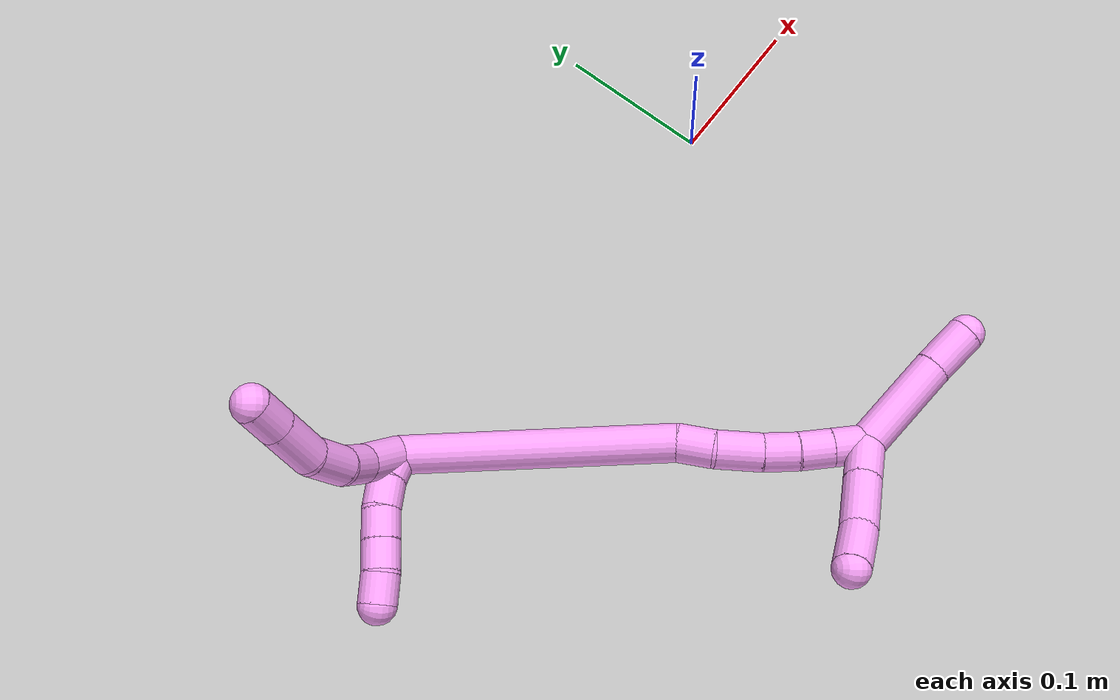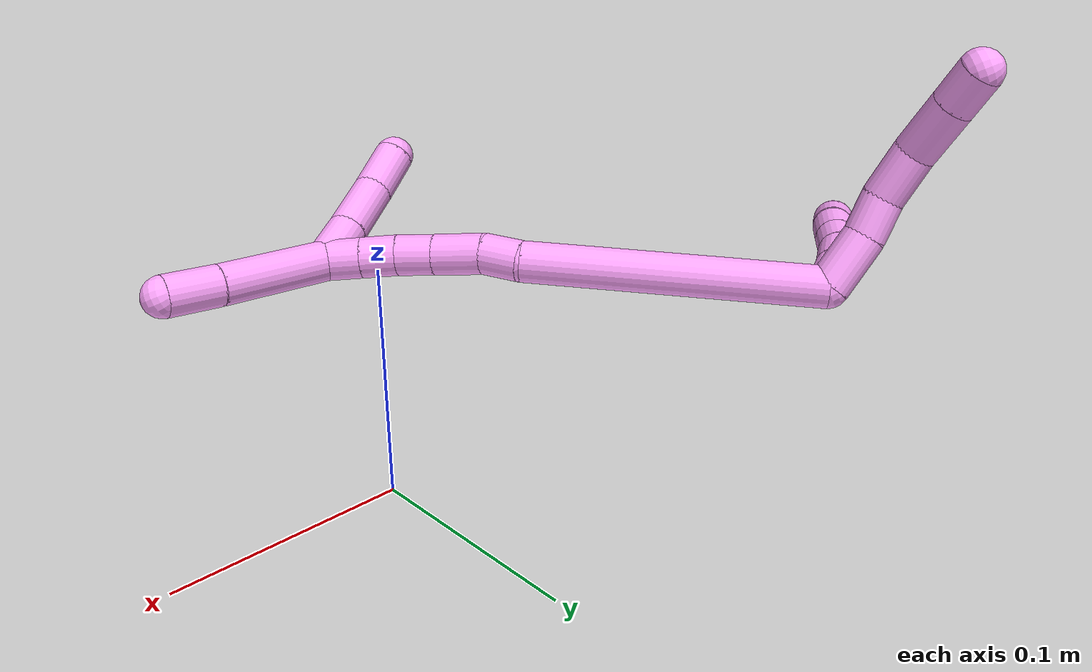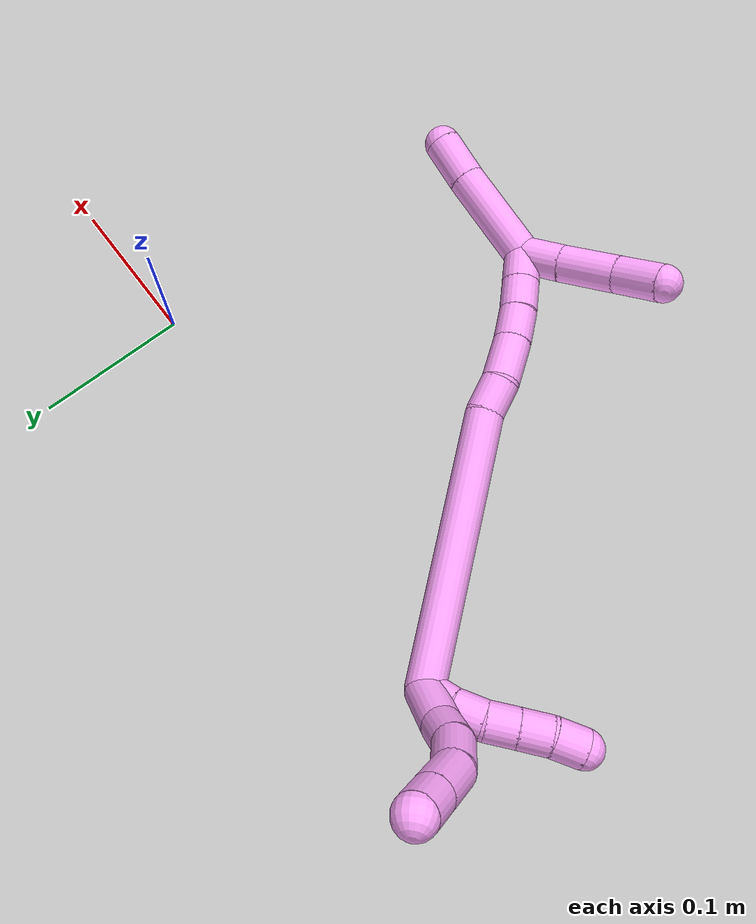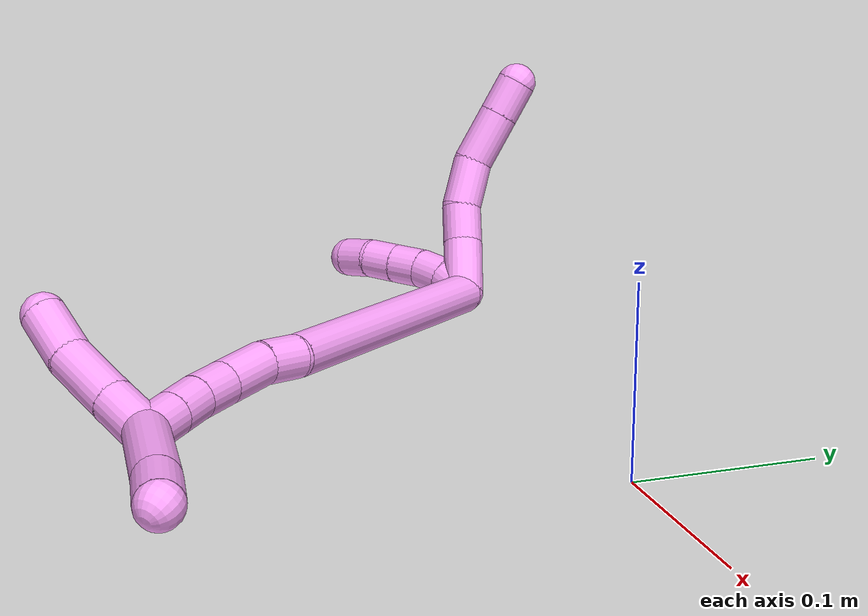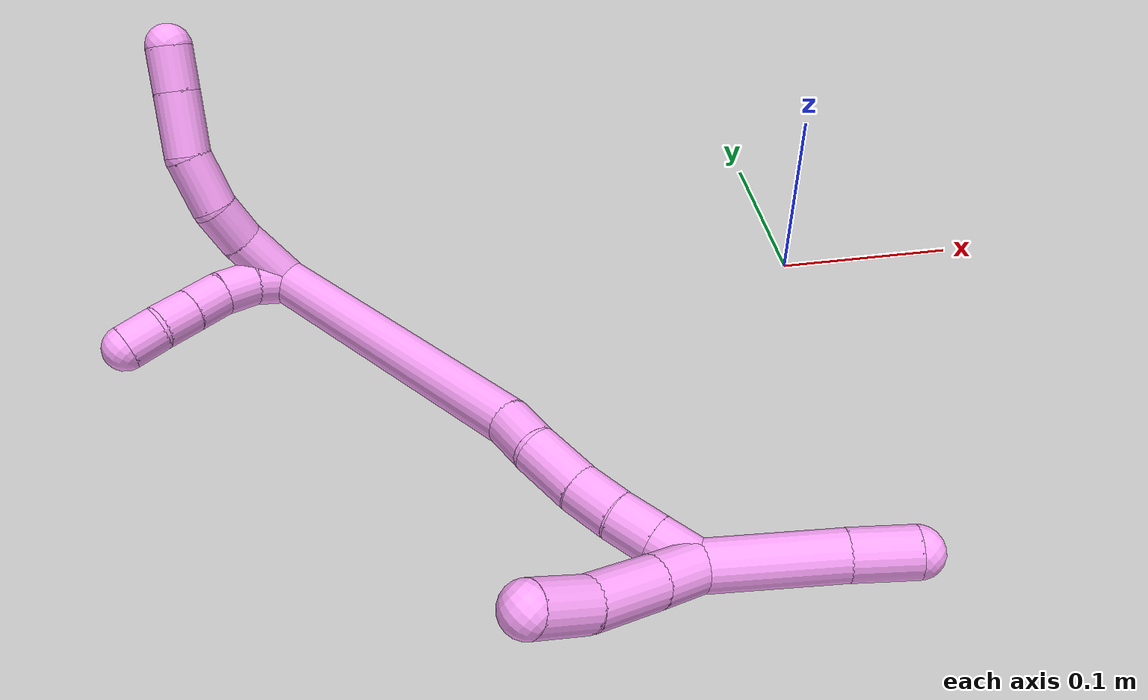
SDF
<sdf version="1.7">
 <world name="default">
  <model name="4">
   <static>0</static>
   <link name="4">
    <collision name="collision-cylinder-e_1_2_8">
     <pose>-0.00583 -0.008313 0.014452 0.52201 -0.336394 -0.090645</pose>
     <geometry><cylinder><radius>0.0125</radius><length>0.035325</length></cylinder></geometry>
     <surface>
      <friction><ode><mu>1.16</mu><mu2>1.16</mu2><slip1>0</slip1><slip2>0</slip2></ode></friction>
      <contact><ode><kp>1e+06</kp><kd>1</kd><max_vel>0</max_vel><min_depth>0.001</min_depth></ode></contact>
     </surface>
    </collision>
    <visual name="visual-cylinder-e_1_2_8">
     <pose>-0.00583 -0.008313 0.014452 0.52201 -0.336394 -0.090645</pose>
     <geometry><cylinder><radius>0.0125</radius><length>0.035325</length></cylinder></geometry>
     <material><ambient>1 0.65098 0.996078 1</ambient></material>
    </visual>
    <collision name="collision-cylinder-e_2_8_9">
     <pose>-0.014957 -0.024548 0.037616 0.737897 -0.272995 -0.106115</pose>
     <geometry><cylinder><radius>0.0125</radius><length>0.024456</length></cylinder></geometry>
     <surface>
      <friction><ode><mu>1.16</mu><mu2>1.16</mu2><slip1>0</slip1><slip2>0</slip2></ode></friction>
      <contact><ode><kp>1e+06</kp><kd>1</kd><max_vel>0</max_vel><min_depth>0.001</min_depth></ode></contact>
     </surface>
    </collision>
    <visual name="visual-cylinder-e_2_8_9">
     <pose>-0.014957 -0.024548 0.037616 0.737897 -0.272995 -0.106115</pose>
     <geometry><cylinder><radius>0.0125</radius><length>0.024456</length></cylinder></geometry>
     <material><ambient>1 0.65098 0.996078 1</ambient></material>
    </visual>
    <collision name="collision-cylinder-e_3_9_10">
     <pose>-0.018284 -0.041997 0.058603 0.660074 -0.001941 -0.000665</pose>
     <geometry><cylinder><radius>0.0125</radius><length>0.031077</length></cylinder></geometry>
     <surface>
      <friction><ode><mu>1.16</mu><mu2>1.16</mu2><slip1>0</slip1><slip2>0</slip2></ode></friction>
      <contact><ode><kp>1e+06</kp><kd>1</kd><max_vel>0</max_vel><min_depth>0.001</min_depth></ode></contact>
     </surface>
    </collision>
    <visual name="visual-cylinder-e_3_9_10">
     <pose>-0.018284 -0.041997 0.058603 0.660074 -0.001941 -0.000665</pose>
     <geometry><cylinder><radius>0.0125</radius><length>0.031077</length></cylinder></geometry>
     <material><ambient>1 0.65098 0.996078 1</ambient></material>
    </visual>
    <collision name="collision-cylinder-e_4_10_11">
     <pose>-0.012914 -0.062319 0.083535 0.706122 0.313893 0.116497</pose>
     <geometry><cylinder><radius>0.0125</radius><length>0.034979</length></cylinder></geometry>
     <surface>
      <friction><ode><mu>1.16</mu><mu2>1.16</mu2><slip1>0</slip1><slip2>0</slip2></ode></friction>
      <contact><ode><kp>1e+06</kp><kd>1</kd><max_vel>0</max_vel><min_depth>0.001</min_depth></ode></contact>
     </surface>
    </collision>
    <visual name="visual-cylinder-e_4_10_11">
     <pose>-0.012914 -0.062319 0.083535 0.706122 0.313893 0.116497</pose>
     <geometry><cylinder><radius>0.0125</radius><length>0.034979</length></cylinder></geometry>
     <material><ambient>1 0.65098 0.996078 1</ambient></material>
    </visual>
    <collision name="collision-cylinder-e_5_11_6">
     <pose>-0.003783 -0.080586 0.104922 0.707966 0.313902 0.116831</pose>
     <geometry><cylinder><radius>0.0125</radius><length>0.024163</length></cylinder></geometry>
     <surface>
      <friction><ode><mu>1.16</mu><mu2>1.16</mu2><slip1>0</slip1><slip2>0</slip2></ode></friction>
      <contact><ode><kp>1e+06</kp><kd>1</kd><max_vel>0</max_vel><min_depth>0.001</min_depth></ode></contact>
     </surface>
    </collision>
    <visual name="visual-cylinder-e_5_11_6">
     <pose>-0.003783 -0.080586 0.104922 0.707966 0.313902 0.116831</pose>
     <geometry><cylinder><radius>0.0125</radius><length>0.024163</length></cylinder></geometry>
     <material><ambient>1 0.65098 0.996078 1</ambient></material>
    </visual>
    <collision name="collision-cylinder-e_1_2_12">
     <pose>-0.008815 -0.001102 0.004592 0.235456 -1.07899 -0.141397</pose>
     <geometry><cylinder><radius>0.0125</radius><length>0.02</length></cylinder></geometry>
     <surface>
      <friction><ode><mu>1.16</mu><mu2>1.16</mu2><slip1>0</slip1><slip2>0</slip2></ode></friction>
      <contact><ode><kp>1e+06</kp><kd>1</kd><max_vel>0</max_vel><min_depth>0.001</min_depth></ode></contact>
     </surface>
    </collision>
    <visual name="visual-cylinder-e_1_2_12">
     <pose>-0.008815 -0.001102 0.004592 0.235456 -1.07899 -0.141397</pose>
     <geometry><cylinder><radius>0.0125</radius><length>0.02</length></cylinder></geometry>
     <material><ambient>1 0.65098 0.996078 1</ambient></material>
    </visual>
    <collision name="collision-cylinder-e_2_12_13">
     <pose>-0.027347 -0.002362 0.01154 0.067201 -1.33242 -0.052835</pose>
     <geometry><cylinder><radius>0.0125</radius><length>0.02</length></cylinder></geometry>
     <surface>
      <friction><ode><mu>1.16</mu><mu2>1.16</mu2><slip1>0</slip1><slip2>0</slip2></ode></friction>
      <contact><ode><kp>1e+06</kp><kd>1</kd><max_vel>0</max_vel><min_depth>0.001</min_depth></ode></contact>
     </surface>
    </collision>
    <visual name="visual-cylinder-e_2_12_13">
     <pose>-0.027347 -0.002362 0.01154 0.067201 -1.33242 -0.052835</pose>
     <geometry><cylinder><radius>0.0125</radius><length>0.02</length></cylinder></geometry>
     <material><ambient>1 0.65098 0.996078 1</ambient></material>
    </visual>
    <collision name="collision-cylinder-e_3_13_14">
     <pose>-0.047052 -0.002449 0.014381 -0.145169 -1.52168 0.138232</pose>
     <geometry><cylinder><radius>0.0125</radius><length>0.02</length></cylinder></geometry>
     <surface>
      <friction><ode><mu>1.16</mu><mu2>1.16</mu2><slip1>0</slip1><slip2>0</slip2></ode></friction>
      <contact><ode><kp>1e+06</kp><kd>1</kd><max_vel>0</max_vel><min_depth>0.001</min_depth></ode></contact>
     </surface>
    </collision>
    <visual name="visual-cylinder-e_3_13_14">
     <pose>-0.047052 -0.002449 0.014381 -0.145169 -1.52168 0.138232</pose>
     <geometry><cylinder><radius>0.0125</radius><length>0.02</length></cylinder></geometry>
     <material><ambient>1 0.65098 0.996078 1</ambient></material>
    </visual>
    <collision name="collision-cylinder-e_4_14_15">
     <pose>-0.067023 -0.002311 0.015445 -0.115528 -1.51255 0.109001</pose>
     <geometry><cylinder><radius>0.0125</radius><length>0.02</length></cylinder></geometry>
     <surface>
      <friction><ode><mu>1.16</mu><mu2>1.16</mu2><slip1>0</slip1><slip2>0</slip2></ode></friction>
      <contact><ode><kp>1e+06</kp><kd>1</kd><max_vel>0</max_vel><min_depth>0.001</min_depth></ode></contact>
     </surface>
    </collision>
    <visual name="visual-cylinder-e_4_14_15">
     <pose>-0.067023 -0.002311 0.015445 -0.115528 -1.51255 0.109001</pose>
     <geometry><cylinder><radius>0.0125</radius><length>0.02</length></cylinder></geometry>
     <material><ambient>1 0.65098 0.996078 1</ambient></material>
    </visual>
    <collision name="collision-cylinder-e_5_15_5">
     <pose>-0.086759 -0.000281 0.017037 -1.09404 -1.34801 0.90554</pose>
     <geometry><cylinder><radius>0.0125</radius><length>0.02</length></cylinder></geometry>
     <surface>
      <friction><ode><mu>1.16</mu><mu2>1.16</mu2><slip1>0</slip1><slip2>0</slip2></ode></friction>
      <contact><ode><kp>1e+06</kp><kd>1</kd><max_vel>0</max_vel><min_depth>0.001</min_depth></ode></contact>
     </surface>
    </collision>
    <visual name="visual-cylinder-e_5_15_5">
     <pose>-0.086759 -0.000281 0.017037 -1.09404 -1.34801 0.90554</pose>
     <geometry><cylinder><radius>0.0125</radius><length>0.02</length></cylinder></geometry>
     <material><ambient>1 0.65098 0.996078 1</ambient></material>
    </visual>
    <collision name="collision-cylinder-e_1_2_16">
     <pose>-0.005606 -0.038911 -0.079767 2.68775 -0.063083 -0.271611</pose>
     <geometry><cylinder><radius>0.0125</radius><length>0.177857</length></cylinder></geometry>
     <surface>
      <friction><ode><mu>1.16</mu><mu2>1.16</mu2><slip1>0</slip1><slip2>0</slip2></ode></friction>
      <contact><ode><kp>1e+06</kp><kd>1</kd><max_vel>0</max_vel><min_depth>0.001</min_depth></ode></contact>
     </surface>
    </collision>
    <visual name="visual-cylinder-e_1_2_16">
     <pose>-0.005606 -0.038911 -0.079767 2.68775 -0.063083 -0.271611</pose>
     <geometry><cylinder><radius>0.0125</radius><length>0.177857</length></cylinder></geometry>
     <material><ambient>1 0.65098 0.996078 1</ambient></material>
    </visual>
    <collision name="collision-cylinder-e_2_16_17">
     <pose>-0.014714 -0.083113 -0.169705 2.66194 -0.296434 -1.09635</pose>
     <geometry><cylinder><radius>0.0125</radius><length>0.023977</length></cylinder></geometry>
     <surface>
      <friction><ode><mu>1.16</mu><mu2>1.16</mu2><slip1>0</slip1><slip2>0</slip2></ode></friction>
      <contact><ode><kp>1e+06</kp><kd>1</kd><max_vel>0</max_vel><min_depth>0.001</min_depth></ode></contact>
     </surface>
    </collision>
    <visual name="visual-cylinder-e_2_16_17">
     <pose>-0.014714 -0.083113 -0.169705 2.66194 -0.296434 -1.09635</pose>
     <geometry><cylinder><radius>0.0125</radius><length>0.023977</length></cylinder></geometry>
     <material><ambient>1 0.65098 0.996078 1</ambient></material>
    </visual>
    <collision name="collision-cylinder-e_3_17_18">
     <pose>-0.02032 -0.09307 -0.194387 2.83046 -0.137169 -0.825642</pose>
     <geometry><cylinder><radius>0.0125</radius><length>0.030772</length></cylinder></geometry>
     <surface>
      <friction><ode><mu>1.16</mu><mu2>1.16</mu2><slip1>0</slip1><slip2>0</slip2></ode></friction>
      <contact><ode><kp>1e+06</kp><kd>1</kd><max_vel>0</max_vel><min_depth>0.001</min_depth></ode></contact>
     </surface>
    </collision>
    <visual name="visual-cylinder-e_3_17_18">
     <pose>-0.02032 -0.09307 -0.194387 2.83046 -0.137169 -0.825642</pose>
     <geometry><cylinder><radius>0.0125</radius><length>0.030772</length></cylinder></geometry>
     <material><ambient>1 0.65098 0.996078 1</ambient></material>
    </visual>
    <collision name="collision-cylinder-e_4_18_19">
     <pose>-0.023015 -0.101791 -0.21969 2.78226 -0.051195 -0.280088</pose>
     <geometry><cylinder><radius>0.0125</radius><length>0.023089</length></cylinder></geometry>
     <surface>
      <friction><ode><mu>1.16</mu><mu2>1.16</mu2><slip1>0</slip1><slip2>0</slip2></ode></friction>
      <contact><ode><kp>1e+06</kp><kd>1</kd><max_vel>0</max_vel><min_depth>0.001</min_depth></ode></contact>
     </surface>
    </collision>
    <visual name="visual-cylinder-e_4_18_19">
     <pose>-0.023015 -0.101791 -0.21969 2.78226 -0.051195 -0.280088</pose>
     <geometry><cylinder><radius>0.0125</radius><length>0.023089</length></cylinder></geometry>
     <material><ambient>1 0.65098 0.996078 1</ambient></material>
    </visual>
    <collision name="collision-cylinder-e_5_19_20">
     <pose>-0.023167 -0.109366 -0.240834 2.81367 0.040086 0.241146</pose>
     <geometry><cylinder><radius>0.0125</radius><length>0.021885</length></cylinder></geometry>
     <surface>
      <friction><ode><mu>1.16</mu><mu2>1.16</mu2><slip1>0</slip1><slip2>0</slip2></ode></friction>
      <contact><ode><kp>1e+06</kp><kd>1</kd><max_vel>0</max_vel><min_depth>0.001</min_depth></ode></contact>
     </surface>
    </collision>
    <visual name="visual-cylinder-e_5_19_20">
     <pose>-0.023167 -0.109366 -0.240834 2.81367 0.040086 0.241146</pose>
     <geometry><cylinder><radius>0.0125</radius><length>0.021885</length></cylinder></geometry>
     <material><ambient>1 0.65098 0.996078 1</ambient></material>
    </visual>
    <collision name="collision-cylinder-e_6_20_1">
     <pose>-0.022229 -0.116527 -0.261776 2.81067 0.044534 0.26517</pose>
     <geometry><cylinder><radius>0.0125</radius><length>0.022421</length></cylinder></geometry>
     <surface>
      <friction><ode><mu>1.16</mu><mu2>1.16</mu2><slip1>0</slip1><slip2>0</slip2></ode></friction>
      <contact><ode><kp>1e+06</kp><kd>1</kd><max_vel>0</max_vel><min_depth>0.001</min_depth></ode></contact>
     </surface>
    </collision>
    <visual name="visual-cylinder-e_6_20_1">
     <pose>-0.022229 -0.116527 -0.261776 2.81067 0.044534 0.26517</pose>
     <geometry><cylinder><radius>0.0125</radius><length>0.022421</length></cylinder></geometry>
     <material><ambient>1 0.65098 0.996078 1</ambient></material>
    </visual>
    <collision name="collision-cylinder-e_1_1_21">
     <pose>-0.03481 -0.122984 -0.267271 0.505159 -1.15185 -0.332101</pose>
     <geometry><cylinder><radius>0.0125</radius><length>0.028635</length></cylinder></geometry>
     <surface>
      <friction><ode><mu>1.16</mu><mu2>1.16</mu2><slip1>0</slip1><slip2>0</slip2></ode></friction>
      <contact><ode><kp>1e+06</kp><kd>1</kd><max_vel>0</max_vel><min_depth>0.001</min_depth></ode></contact>
     </surface>
    </collision>
    <visual name="visual-cylinder-e_1_1_21">
     <pose>-0.03481 -0.122984 -0.267271 0.505159 -1.15185 -0.332101</pose>
     <geometry><cylinder><radius>0.0125</radius><length>0.028635</length></cylinder></geometry>
     <material><ambient>1 0.65098 0.996078 1</ambient></material>
    </visual>
    <collision name="collision-cylinder-e_2_21_22">
     <pose>-0.065581 -0.130363 -0.255094 0.572246 -1.12653 -0.367383</pose>
     <geometry><cylinder><radius>0.0125</radius><length>0.039188</length></cylinder></geometry>
     <surface>
      <friction><ode><mu>1.16</mu><mu2>1.16</mu2><slip1>0</slip1><slip2>0</slip2></ode></friction>
      <contact><ode><kp>1e+06</kp><kd>1</kd><max_vel>0</max_vel><min_depth>0.001</min_depth></ode></contact>
     </surface>
    </collision>
    <visual name="visual-cylinder-e_2_21_22">
     <pose>-0.065581 -0.130363 -0.255094 0.572246 -1.12653 -0.367383</pose>
     <geometry><cylinder><radius>0.0125</radius><length>0.039188</length></cylinder></geometry>
     <material><ambient>1 0.65098 0.996078 1</ambient></material>
    </visual>
    <collision name="collision-cylinder-e_3_22_4">
     <pose>-0.096254 -0.140377 -0.240231 0.61122 -0.938867 -0.31738</pose>
     <geometry><cylinder><radius>0.0125</radius><length>0.032177</length></cylinder></geometry>
     <surface>
      <friction><ode><mu>1.16</mu><mu2>1.16</mu2><slip1>0</slip1><slip2>0</slip2></ode></friction>
      <contact><ode><kp>1e+06</kp><kd>1</kd><max_vel>0</max_vel><min_depth>0.001</min_depth></ode></contact>
     </surface>
    </collision>
    <visual name="visual-cylinder-e_3_22_4">
     <pose>-0.096254 -0.140377 -0.240231 0.61122 -0.938867 -0.31738</pose>
     <geometry><cylinder><radius>0.0125</radius><length>0.032177</length></cylinder></geometry>
     <material><ambient>1 0.65098 0.996078 1</ambient></material>
    </visual>
    <collision name="collision-cylinder-e_1_1_23">
     <pose>0.0012 -0.13128 -0.294727 2.68027 0.742848 2.05645</pose>
     <geometry><cylinder><radius>0.0125</radius><length>0.067801</length></cylinder></geometry>
     <surface>
      <friction><ode><mu>1.16</mu><mu2>1.16</mu2><slip1>0</slip1><slip2>0</slip2></ode></friction>
      <contact><ode><kp>1e+06</kp><kd>1</kd><max_vel>0</max_vel><min_depth>0.001</min_depth></ode></contact>
     </surface>
    </collision>
    <visual name="visual-cylinder-e_1_1_23">
     <pose>0.0012 -0.13128 -0.294727 2.68027 0.742848 2.05645</pose>
     <geometry><cylinder><radius>0.0125</radius><length>0.067801</length></cylinder></geometry>
     <material><ambient>1 0.65098 0.996078 1</ambient></material>
    </visual>
    <collision name="collision-cylinder-e_2_23_3">
     <pose>0.034463 -0.148071 -0.328049 2.66388 0.696913 1.96057</pose>
     <geometry><cylinder><radius>0.0125</radius><length>0.032199</length></cylinder></geometry>
     <surface>
      <friction><ode><mu>1.16</mu><mu2>1.16</mu2><slip1>0</slip1><slip2>0</slip2></ode></friction>
      <contact><ode><kp>1e+06</kp><kd>1</kd><max_vel>0</max_vel><min_depth>0.001</min_depth></ode></contact>
     </surface>
    </collision>
    <visual name="visual-cylinder-e_2_23_3">
     <pose>0.034463 -0.148071 -0.328049 2.66388 0.696913 1.96057</pose>
     <geometry><cylinder><radius>0.0125</radius><length>0.032199</length></cylinder></geometry>
     <material><ambient>1 0.65098 0.996078 1</ambient></material>
    </visual>
    <collision name="collision-sphere-3">
     <pose>0.044797 -0.153746 -0.339013 0 -0 0</pose>
     <geometry><sphere><radius>0.0125</radius></sphere></geometry>
     <surface>
      <friction><ode><mu>1.16</mu><mu2>1.16</mu2><slip1>0</slip1><slip2>0</slip2></ode></friction>
      <contact><ode><kp>1e+06</kp><kd>1</kd><max_vel>0</max_vel><min_depth>0.001</min_depth></ode></contact>
     </surface>
    </collision>
    <visual name="visual-sphere-3">
     <pose>0.044797 -0.153746 -0.339013 0 -0 0</pose>
     <geometry><sphere><radius>0.0125</radius></sphere></geometry>
     <material><ambient>1 0.65098 0.996078 1</ambient></material>
    </visual>
    <collision name="collision-sphere-23">
     <pose>0.02413 -0.142395 -0.317086 0 -0 0</pose>
     <geometry><sphere><radius>0.0125</radius></sphere></geometry>
     <surface>
      <friction><ode><mu>1.16</mu><mu2>1.16</mu2><slip1>0</slip1><slip2>0</slip2></ode></friction>
      <contact><ode><kp>1e+06</kp><kd>1</kd><max_vel>0</max_vel><min_depth>0.001</min_depth></ode></contact>
     </surface>
    </collision>
    <visual name="visual-sphere-23">
     <pose>0.02413 -0.142395 -0.317086 0 -0 0</pose>
     <geometry><sphere><radius>0.0125</radius></sphere></geometry>
     <material><ambient>1 0.65098 0.996078 1</ambient></material>
    </visual>
    <collision name="collision-sphere-4">
     <pose>-0.109236 -0.145831 -0.232448 0 -0 0</pose>
     <geometry><sphere><radius>0.0125</radius></sphere></geometry>
     <surface>
      <friction><ode><mu>1.16</mu><mu2>1.16</mu2><slip1>0</slip1><slip2>0</slip2></ode></friction>
      <contact><ode><kp>1e+06</kp><kd>1</kd><max_vel>0</max_vel><min_depth>0.001</min_depth></ode></contact>
     </surface>
    </collision>
    <visual name="visual-sphere-4">
     <pose>-0.109236 -0.145831 -0.232448 0 -0 0</pose>
     <geometry><sphere><radius>0.0125</radius></sphere></geometry>
     <material><ambient>1 0.65098 0.996078 1</ambient></material>
    </visual>
    <collision name="collision-sphere-22">
     <pose>-0.083273 -0.134924 -0.248014 0 -0 0</pose>
     <geometry><sphere><radius>0.0125</radius></sphere></geometry>
     <surface>
      <friction><ode><mu>1.16</mu><mu2>1.16</mu2><slip1>0</slip1><slip2>0</slip2></ode></friction>
      <contact><ode><kp>1e+06</kp><kd>1</kd><max_vel>0</max_vel><min_depth>0.001</min_depth></ode></contact>
     </surface>
    </collision>
    <visual name="visual-sphere-22">
     <pose>-0.083273 -0.134924 -0.248014 0 -0 0</pose>
     <geometry><sphere><radius>0.0125</radius></sphere></geometry>
     <material><ambient>1 0.65098 0.996078 1</ambient></material>
    </visual>
    <collision name="collision-sphere-21">
     <pose>-0.047889 -0.125803 -0.262174 0 -0 0</pose>
     <geometry><sphere><radius>0.0125</radius></sphere></geometry>
     <surface>
      <friction><ode><mu>1.16</mu><mu2>1.16</mu2><slip1>0</slip1><slip2>0</slip2></ode></friction>
      <contact><ode><kp>1e+06</kp><kd>1</kd><max_vel>0</max_vel><min_depth>0.001</min_depth></ode></contact>
     </surface>
    </collision>
    <visual name="visual-sphere-21">
     <pose>-0.047889 -0.125803 -0.262174 0 -0 0</pose>
     <geometry><sphere><radius>0.0125</radius></sphere></geometry>
     <material><ambient>1 0.65098 0.996078 1</ambient></material>
    </visual>
    <collision name="collision-sphere-1">
     <pose>-0.02173 -0.120165 -0.272368 0 -0 0</pose>
     <geometry><sphere><radius>0.0125</radius></sphere></geometry>
     <surface>
      <friction><ode><mu>1.16</mu><mu2>1.16</mu2><slip1>0</slip1><slip2>0</slip2></ode></friction>
      <contact><ode><kp>1e+06</kp><kd>1</kd><max_vel>0</max_vel><min_depth>0.001</min_depth></ode></contact>
     </surface>
    </collision>
    <visual name="visual-sphere-1">
     <pose>-0.02173 -0.120165 -0.272368 0 -0 0</pose>
     <geometry><sphere><radius>0.0125</radius></sphere></geometry>
     <material><ambient>1 0.65098 0.996078 1</ambient></material>
    </visual>
    <collision name="collision-sphere-6">
     <pose>-5.3e-05 -0.088059 0.113652 0 -0 0</pose>
     <geometry><sphere><radius>0.0125</radius></sphere></geometry>
     <surface>
      <friction><ode><mu>1.16</mu><mu2>1.16</mu2><slip1>0</slip1><slip2>0</slip2></ode></friction>
      <contact><ode><kp>1e+06</kp><kd>1</kd><max_vel>0</max_vel><min_depth>0.001</min_depth></ode></contact>
     </surface>
    </collision>
    <visual name="visual-sphere-6">
     <pose>-5.3e-05 -0.088059 0.113652 0 -0 0</pose>
     <geometry><sphere><radius>0.0125</radius></sphere></geometry>
     <material><ambient>1 0.65098 0.996078 1</ambient></material>
    </visual>
    <collision name="collision-sphere-11">
     <pose>-0.007514 -0.073114 0.096192 0 -0 0</pose>
     <geometry><sphere><radius>0.0125</radius></sphere></geometry>
     <surface>
      <friction><ode><mu>1.16</mu><mu2>1.16</mu2><slip1>0</slip1><slip2>0</slip2></ode></friction>
      <contact><ode><kp>1e+06</kp><kd>1</kd><max_vel>0</max_vel><min_depth>0.001</min_depth></ode></contact>
     </surface>
    </collision>
    <visual name="visual-sphere-11">
     <pose>-0.007514 -0.073114 0.096192 0 -0 0</pose>
     <geometry><sphere><radius>0.0125</radius></sphere></geometry>
     <material><ambient>1 0.65098 0.996078 1</ambient></material>
    </visual>
    <collision name="collision-sphere-10">
     <pose>-0.018314 -0.051525 0.070878 0 -0 0</pose>
     <geometry><sphere><radius>0.0125</radius></sphere></geometry>
     <surface>
      <friction><ode><mu>1.16</mu><mu2>1.16</mu2><slip1>0</slip1><slip2>0</slip2></ode></friction>
      <contact><ode><kp>1e+06</kp><kd>1</kd><max_vel>0</max_vel><min_depth>0.001</min_depth></ode></contact>
     </surface>
    </collision>
    <visual name="visual-sphere-10">
     <pose>-0.018314 -0.051525 0.070878 0 -0 0</pose>
     <geometry><sphere><radius>0.0125</radius></sphere></geometry>
     <material><ambient>1 0.65098 0.996078 1</ambient></material>
    </visual>
    <collision name="collision-sphere-9">
     <pose>-0.018254 -0.03247 0.046329 0 -0 0</pose>
     <geometry><sphere><radius>0.0125</radius></sphere></geometry>
     <surface>
      <friction><ode><mu>1.16</mu><mu2>1.16</mu2><slip1>0</slip1><slip2>0</slip2></ode></friction>
      <contact><ode><kp>1e+06</kp><kd>1</kd><max_vel>0</max_vel><min_depth>0.001</min_depth></ode></contact>
     </surface>
    </collision>
    <visual name="visual-sphere-9">
     <pose>-0.018254 -0.03247 0.046329 0 -0 0</pose>
     <geometry><sphere><radius>0.0125</radius></sphere></geometry>
     <material><ambient>1 0.65098 0.996078 1</ambient></material>
    </visual>
    <collision name="collision-sphere-2">
     <geometry><sphere><radius>0.0125</radius></sphere></geometry>
     <surface>
      <friction><ode><mu>1.16</mu><mu2>1.16</mu2><slip1>0</slip1><slip2>0</slip2></ode></friction>
      <contact><ode><kp>1e+06</kp><kd>1</kd><max_vel>0</max_vel><min_depth>0.001</min_depth></ode></contact>
     </surface>
    </collision>
    <visual name="visual-sphere-2">
     <geometry><sphere><radius>0.0125</radius></sphere></geometry>
     <material><ambient>1 0.65098 0.996078 1</ambient></material>
    </visual>
    <collision name="collision-sphere-19">
     <pose>-0.023605 -0.105845 -0.230483 0 -0 0</pose>
     <geometry><sphere><radius>0.0125</radius></sphere></geometry>
     <surface>
      <friction><ode><mu>1.16</mu><mu2>1.16</mu2><slip1>0</slip1><slip2>0</slip2></ode></friction>
      <contact><ode><kp>1e+06</kp><kd>1</kd><max_vel>0</max_vel><min_depth>0.001</min_depth></ode></contact>
     </surface>
    </collision>
    <visual name="visual-sphere-19">
     <pose>-0.023605 -0.105845 -0.230483 0 -0 0</pose>
     <geometry><sphere><radius>0.0125</radius></sphere></geometry>
     <material><ambient>1 0.65098 0.996078 1</ambient></material>
    </visual>
    <collision name="collision-sphere-8">
     <pose>-0.01166 -0.016627 0.028904 0 -0 0</pose>
     <geometry><sphere><radius>0.0125</radius></sphere></geometry>
     <surface>
      <friction><ode><mu>1.16</mu><mu2>1.16</mu2><slip1>0</slip1><slip2>0</slip2></ode></friction>
      <contact><ode><kp>1e+06</kp><kd>1</kd><max_vel>0</max_vel><min_depth>0.001</min_depth></ode></contact>
     </surface>
    </collision>
    <visual name="visual-sphere-8">
     <pose>-0.01166 -0.016627 0.028904 0 -0 0</pose>
     <geometry><sphere><radius>0.0125</radius></sphere></geometry>
     <material><ambient>1 0.65098 0.996078 1</ambient></material>
    </visual>
    <collision name="collision-sphere-12">
     <pose>-0.01763 -0.002203 0.009184 0 -0 0</pose>
     <geometry><sphere><radius>0.0125</radius></sphere></geometry>
     <surface>
      <friction><ode><mu>1.16</mu><mu2>1.16</mu2><slip1>0</slip1><slip2>0</slip2></ode></friction>
      <contact><ode><kp>1e+06</kp><kd>1</kd><max_vel>0</max_vel><min_depth>0.001</min_depth></ode></contact>
     </surface>
    </collision>
    <visual name="visual-sphere-12">
     <pose>-0.01763 -0.002203 0.009184 0 -0 0</pose>
     <geometry><sphere><radius>0.0125</radius></sphere></geometry>
     <material><ambient>1 0.65098 0.996078 1</ambient></material>
    </visual>
    <collision name="collision-sphere-13">
     <pose>-0.037064 -0.00252 0.013896 0 -0 0</pose>
     <geometry><sphere><radius>0.0125</radius></sphere></geometry>
     <surface>
      <friction><ode><mu>1.16</mu><mu2>1.16</mu2><slip1>0</slip1><slip2>0</slip2></ode></friction>
      <contact><ode><kp>1e+06</kp><kd>1</kd><max_vel>0</max_vel><min_depth>0.001</min_depth></ode></contact>
     </surface>
    </collision>
    <visual name="visual-sphere-13">
     <pose>-0.037064 -0.00252 0.013896 0 -0 0</pose>
     <geometry><sphere><radius>0.0125</radius></sphere></geometry>
     <material><ambient>1 0.65098 0.996078 1</ambient></material>
    </visual>
    <collision name="collision-sphere-14">
     <pose>-0.05704 -0.002378 0.014867 0 -0 0</pose>
     <geometry><sphere><radius>0.0125</radius></sphere></geometry>
     <surface>
      <friction><ode><mu>1.16</mu><mu2>1.16</mu2><slip1>0</slip1><slip2>0</slip2></ode></friction>
      <contact><ode><kp>1e+06</kp><kd>1</kd><max_vel>0</max_vel><min_depth>0.001</min_depth></ode></contact>
     </surface>
    </collision>
    <visual name="visual-sphere-14">
     <pose>-0.05704 -0.002378 0.014867 0 -0 0</pose>
     <geometry><sphere><radius>0.0125</radius></sphere></geometry>
     <material><ambient>1 0.65098 0.996078 1</ambient></material>
    </visual>
    <collision name="collision-sphere-15">
     <pose>-0.077006 -0.002244 0.016024 0 -0 0</pose>
     <geometry><sphere><radius>0.0125</radius></sphere></geometry>
     <surface>
      <friction><ode><mu>1.16</mu><mu2>1.16</mu2><slip1>0</slip1><slip2>0</slip2></ode></friction>
      <contact><ode><kp>1e+06</kp><kd>1</kd><max_vel>0</max_vel><min_depth>0.001</min_depth></ode></contact>
     </surface>
    </collision>
    <visual name="visual-sphere-15">
     <pose>-0.077006 -0.002244 0.016024 0 -0 0</pose>
     <geometry><sphere><radius>0.0125</radius></sphere></geometry>
     <material><ambient>1 0.65098 0.996078 1</ambient></material>
    </visual>
    <collision name="collision-sphere-5">
     <pose>-0.096512 0.001682 0.018051 0 -0 0</pose>
     <geometry><sphere><radius>0.0125</radius></sphere></geometry>
     <surface>
      <friction><ode><mu>1.16</mu><mu2>1.16</mu2><slip1>0</slip1><slip2>0</slip2></ode></friction>
      <contact><ode><kp>1e+06</kp><kd>1</kd><max_vel>0</max_vel><min_depth>0.001</min_depth></ode></contact>
     </surface>
    </collision>
    <visual name="visual-sphere-5">
     <pose>-0.096512 0.001682 0.018051 0 -0 0</pose>
     <geometry><sphere><radius>0.0125</radius></sphere></geometry>
     <material><ambient>1 0.65098 0.996078 1</ambient></material>
    </visual>
    <collision name="collision-sphere-16">
     <pose>-0.011212 -0.077822 -0.159534 0 -0 0</pose>
     <geometry><sphere><radius>0.0125</radius></sphere></geometry>
     <surface>
      <friction><ode><mu>1.16</mu><mu2>1.16</mu2><slip1>0</slip1><slip2>0</slip2></ode></friction>
      <contact><ode><kp>1e+06</kp><kd>1</kd><max_vel>0</max_vel><min_depth>0.001</min_depth></ode></contact>
     </surface>
    </collision>
    <visual name="visual-sphere-16">
     <pose>-0.011212 -0.077822 -0.159534 0 -0 0</pose>
     <geometry><sphere><radius>0.0125</radius></sphere></geometry>
     <material><ambient>1 0.65098 0.996078 1</ambient></material>
    </visual>
    <collision name="collision-sphere-17">
     <pose>-0.018216 -0.088404 -0.179877 0 -0 0</pose>
     <geometry><sphere><radius>0.0125</radius></sphere></geometry>
     <surface>
      <friction><ode><mu>1.16</mu><mu2>1.16</mu2><slip1>0</slip1><slip2>0</slip2></ode></friction>
      <contact><ode><kp>1e+06</kp><kd>1</kd><max_vel>0</max_vel><min_depth>0.001</min_depth></ode></contact>
     </surface>
    </collision>
    <visual name="visual-sphere-17">
     <pose>-0.018216 -0.088404 -0.179877 0 -0 0</pose>
     <geometry><sphere><radius>0.0125</radius></sphere></geometry>
     <material><ambient>1 0.65098 0.996078 1</ambient></material>
    </visual>
    <collision name="collision-sphere-18">
     <pose>-0.022424 -0.097736 -0.208897 0 -0 0</pose>
     <geometry><sphere><radius>0.0125</radius></sphere></geometry>
     <surface>
      <friction><ode><mu>1.16</mu><mu2>1.16</mu2><slip1>0</slip1><slip2>0</slip2></ode></friction>
      <contact><ode><kp>1e+06</kp><kd>1</kd><max_vel>0</max_vel><min_depth>0.001</min_depth></ode></contact>
     </surface>
    </collision>
    <visual name="visual-sphere-18">
     <pose>-0.022424 -0.097736 -0.208897 0 -0 0</pose>
     <geometry><sphere><radius>0.0125</radius></sphere></geometry>
     <material><ambient>1 0.65098 0.996078 1</ambient></material>
    </visual>
    <collision name="collision-sphere-20">
     <pose>-0.022728 -0.112888 -0.251185 0 -0 0</pose>
     <geometry><sphere><radius>0.0125</radius></sphere></geometry>
     <surface>
      <friction><ode><mu>1.16</mu><mu2>1.16</mu2><slip1>0</slip1><slip2>0</slip2></ode></friction>
      <contact><ode><kp>1e+06</kp><kd>1</kd><max_vel>0</max_vel><min_depth>0.001</min_depth></ode></contact>
     </surface>
    </collision>
    <visual name="visual-sphere-20">
     <pose>-0.022728 -0.112888 -0.251185 0 -0 0</pose>
     <geometry><sphere><radius>0.0125</radius></sphere></geometry>
     <material><ambient>1 0.65098 0.996078 1</ambient></material>
    </visual>
    <inertial>
     <pose>-0.020544 -0.069928 -0.115209 0 -0 0</pose>
     <mass>0.75</mass>
     <inertia>
      <ixx>0.000357</ixx>
      <ixy>0</ixy>
      <ixz>0</ixz>
      <iyy>-0.000492</iyy>
      <iyz>0</iyz>
      <izz>0.000252</izz>
     </inertia>
    </inertial>
   </link>
   <pose>-0.293042 0.017299 0.012382 -1.15435 0.015306 0.74247</pose>
  </model>
 </world>
</sdf>
